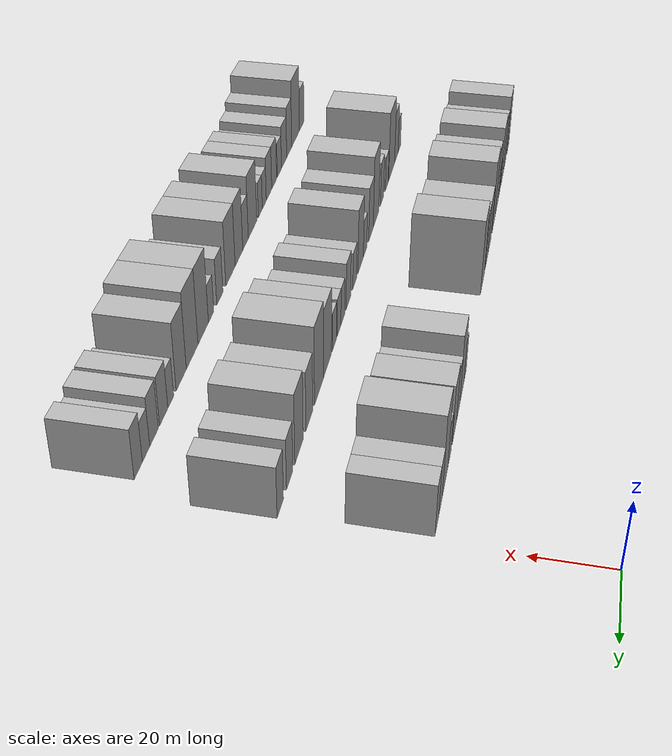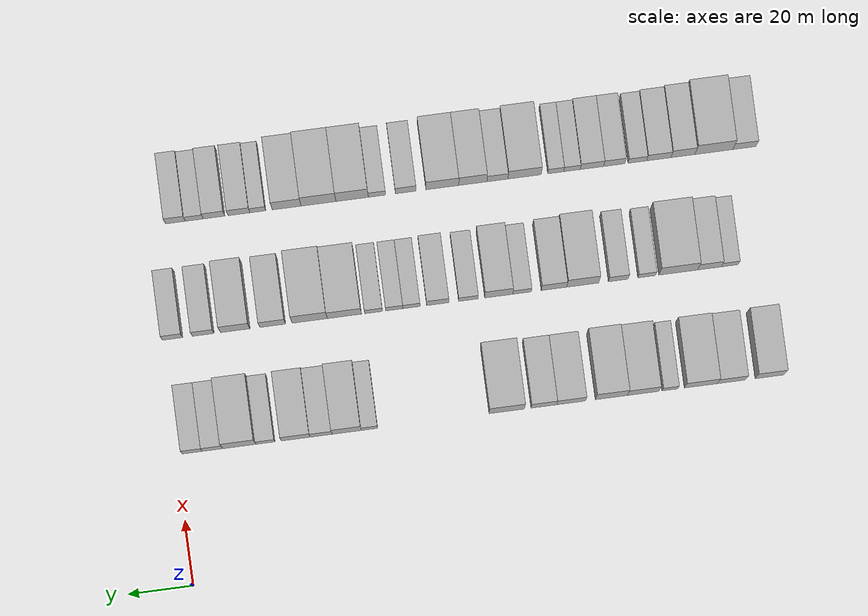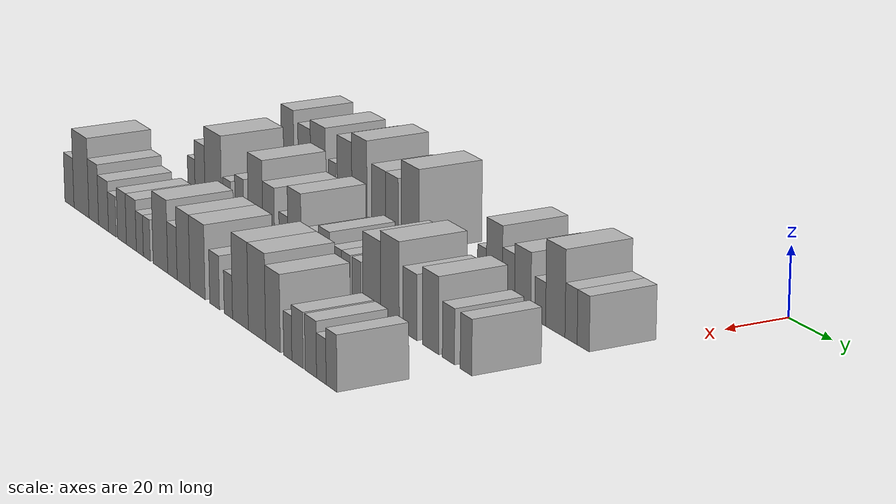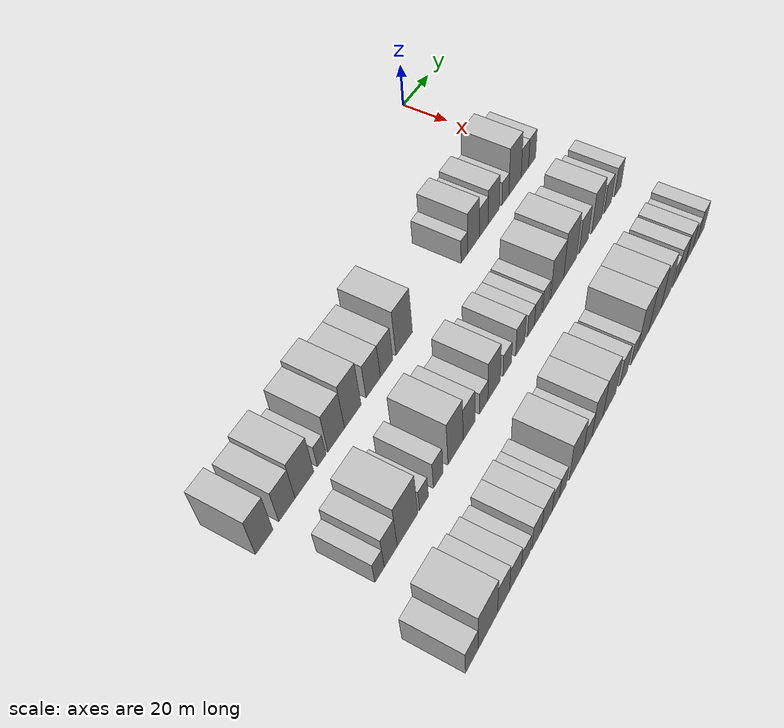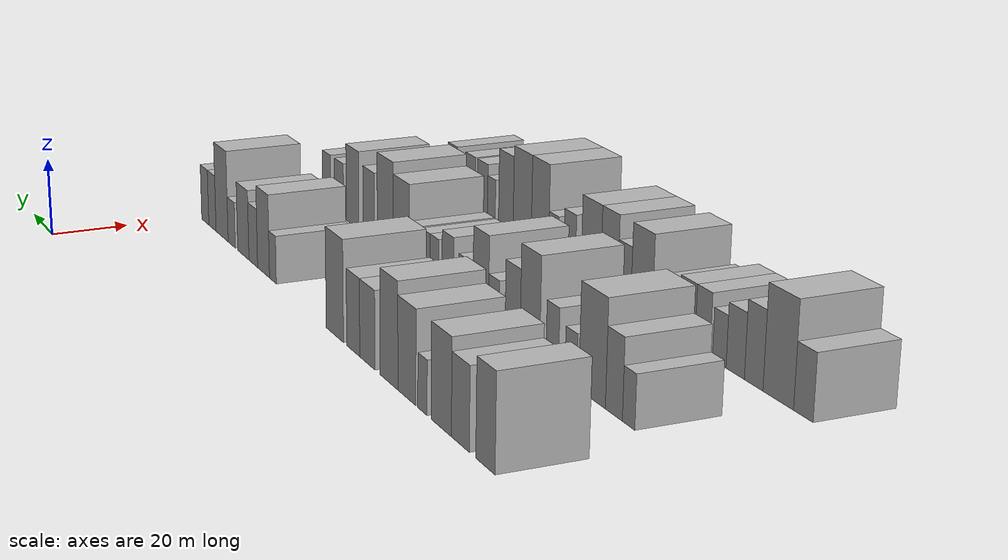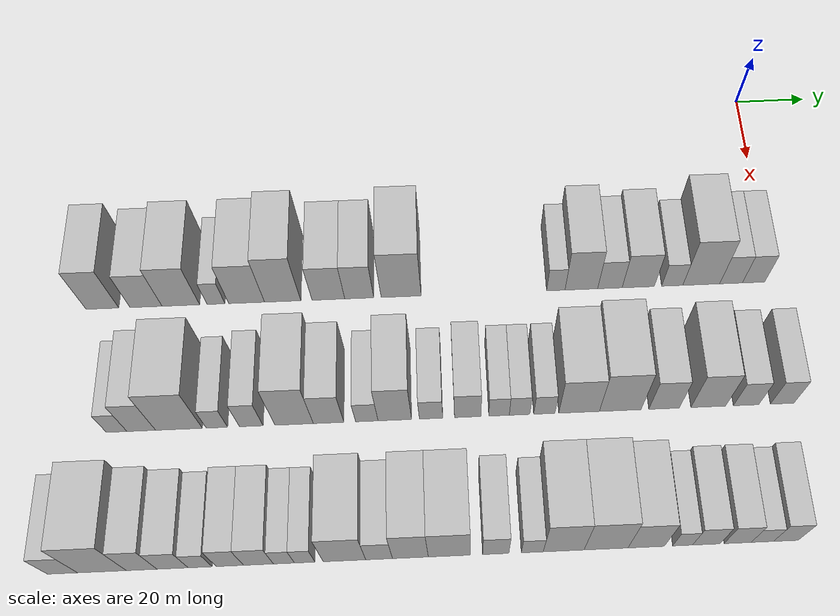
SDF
<sdf version="1.6">
 <world name="default">
  <model name="building_23">
   <static>1</static>
   <pose>50.0000 -180.9053 0 0.000000 0.000000 0.000000</pose>
   <link name="link">
    <pose>0 0 10.50 0 0 0</pose>
    <collision name="collision"><geometry><box><size>20.0000 8.7450 21.0000</size></box></geometry></collision>
    <visual name="visual">
     <cast_shadows>0</cast_shadows>
     <geometry><box><size>20.0000 8.7450 21.0000</size></box></geometry>
     <material>
      <script>
       <uri>model://HANNAS_wall/materials/scripts</uri>
       <uri>model://HANNAS_wall/materials/textures</uri>
       <name>vrc/HANNAS_wall</name>
      </script>
     </material>
    </visual>
   </link>
  </model>
  <model name="building_24">
   <static>1</static>
   <pose>50.0000 -169.2547 0 0.000000 0.000000 0.000000</pose>
   <link name="link">
    <pose>0 0 9.00 0 0 0</pose>
    <collision name="collision"><geometry><box><size>20.0000 8.5562 18.0000</size></box></geometry></collision>
    <visual name="visual">
     <cast_shadows>0</cast_shadows>
     <geometry><box><size>20.0000 8.5562 18.0000</size></box></geometry>
     <material>
      <script>
       <uri>model://HANNAS_wall/materials/scripts</uri>
       <uri>model://HANNAS_wall/materials/textures</uri>
       <name>vrc/HANNAS_wall</name>
      </script>
     </material>
    </visual>
   </link>
  </model>
  <model name="building_25">
   <static>1</static>
   <pose>50.0000 -159.9350 0 0.000000 0.000000 0.000000</pose>
   <link name="link">
    <pose>0 0 10.50 0 0 0</pose>
    <collision name="collision"><geometry><box><size>20.0000 10.0831 21.0000</size></box></geometry></collision>
    <visual name="visual">
     <cast_shadows>0</cast_shadows>
     <geometry><box><size>20.0000 10.0831 21.0000</size></box></geometry>
     <material>
      <script>
       <uri>model://HANNAS_wall/materials/scripts</uri>
       <uri>model://HANNAS_wall/materials/textures</uri>
       <name>vrc/HANNAS_wall</name>
      </script>
     </material>
    </visual>
   </link>
  </model>
  <model name="building_26">
   <static>1</static>
   <pose>50.0000 -150.4912 0 0.000000 0.000000 0.000000</pose>
   <link name="link">
    <pose>0 0 6.00 0 0 0</pose>
    <collision name="collision"><geometry><box><size>20.0000 4.8045 12.0000</size></box></geometry></collision>
    <visual name="visual">
     <cast_shadows>0</cast_shadows>
     <geometry><box><size>20.0000 4.8045 12.0000</size></box></geometry>
     <material>
      <script>
       <uri>model://HANNAS_wall/materials/scripts</uri>
       <uri>model://HANNAS_wall/materials/textures</uri>
       <name>vrc/HANNAS_wall</name>
      </script>
     </material>
    </visual>
   </link>
  </model>
  <model name="building_27">
   <static>1</static>
   <pose>50.0000 -142.2835 0 0.000000 0.000000 0.000000</pose>
   <link name="link">
    <pose>0 0 10.50 0 0 0</pose>
    <collision name="collision"><geometry><box><size>20.0000 9.6110 21.0000</size></box></geometry></collision>
    <visual name="visual">
     <cast_shadows>0</cast_shadows>
     <geometry><box><size>20.0000 9.6110 21.0000</size></box></geometry>
     <material>
      <script>
       <uri>model://HANNAS_wall/materials/scripts</uri>
       <uri>model://HANNAS_wall/materials/textures</uri>
       <name>vrc/HANNAS_wall</name>
      </script>
     </material>
    </visual>
   </link>
  </model>
  <model name="building_28">
   <static>1</static>
   <pose>50.0000 -132.5884 0 0.000000 0.000000 0.000000</pose>
   <link name="link">
    <pose>0 0 12.00 0 0 0</pose>
    <collision name="collision"><geometry><box><size>20.0000 9.7791 24.0000</size></box></geometry></collision>
    <visual name="visual">
     <cast_shadows>0</cast_shadows>
     <geometry><box><size>20.0000 9.7791 24.0000</size></box></geometry>
     <material>
      <script>
       <uri>model://HANNAS_wall/materials/scripts</uri>
       <uri>model://HANNAS_wall/materials/textures</uri>
       <name>vrc/HANNAS_wall</name>
      </script>
     </material>
    </visual>
   </link>
  </model>
  <model name="building_29">
   <static>1</static>
   <pose>50.0000 -120.2883 0 0.000000 0.000000 0.000000</pose>
   <link name="link">
    <pose>0 0 9.00 0 0 0</pose>
    <collision name="collision"><geometry><box><size>20.0000 8.8212 18.0000</size></box></geometry></collision>
    <visual name="visual">
     <cast_shadows>0</cast_shadows>
     <geometry><box><size>20.0000 8.8212 18.0000</size></box></geometry>
     <material>
      <script>
       <uri>model://HANNAS_wall/materials/scripts</uri>
       <uri>model://HANNAS_wall/materials/textures</uri>
       <name>vrc/HANNAS_wall</name>
      </script>
     </material>
    </visual>
   </link>
  </model>
  <model name="building_30">
   <static>1</static>
   <pose>50.0000 -111.9730 0 0.000000 0.000000 0.000000</pose>
   <link name="link">
    <pose>0 0 9.00 0 0 0</pose>
    <collision name="collision"><geometry><box><size>20.0000 7.8093 18.0000</size></box></geometry></collision>
    <visual name="visual">
     <cast_shadows>0</cast_shadows>
     <geometry><box><size>20.0000 7.8093 18.0000</size></box></geometry>
     <material>
      <script>
       <uri>model://HANNAS_wall/materials/scripts</uri>
       <uri>model://HANNAS_wall/materials/textures</uri>
       <name>vrc/HANNAS_wall</name>
      </script>
     </material>
    </visual>
   </link>
  </model>
  <model name="building_31">
   <static>1</static>
   <pose>50.0000 -100.6690 0 0.000000 0.000000 0.000000</pose>
   <link name="link">
    <pose>0 0 12.00 0 0 0</pose>
    <collision name="collision"><geometry><box><size>20.0000 10.7988 24.0000</size></box></geometry></collision>
    <visual name="visual">
     <cast_shadows>0</cast_shadows>
     <geometry><box><size>20.0000 10.7988 24.0000</size></box></geometry>
     <material>
      <script>
       <uri>model://HANNAS_wall/materials/scripts</uri>
       <uri>model://HANNAS_wall/materials/textures</uri>
       <name>vrc/HANNAS_wall</name>
      </script>
     </material>
    </visual>
   </link>
  </model>
  <model name="building_32">
   <static>1</static>
   <pose>50.0000 -58.7808 0 0.000000 0.000000 0.000000</pose>
   <link name="link">
    <pose>0 0 6.00 0 0 0</pose>
    <collision name="collision"><geometry><box><size>20.0000 4.9926 12.0000</size></box></geometry></collision>
    <visual name="visual">
     <cast_shadows>0</cast_shadows>
     <geometry><box><size>20.0000 4.9926 12.0000</size></box></geometry>
     <material>
      <script>
       <uri>model://HANNAS_wall/materials/scripts</uri>
       <uri>model://HANNAS_wall/materials/textures</uri>
       <name>vrc/HANNAS_wall</name>
      </script>
     </material>
    </visual>
   </link>
  </model>
  <model name="building_33">
   <static>1</static>
   <pose>50.0000 -51.8404 0 0.000000 0.000000 0.000000</pose>
   <link name="link">
    <pose>0 0 10.50 0 0 0</pose>
    <collision name="collision"><geometry><box><size>20.0000 8.8882 21.0000</size></box></geometry></collision>
    <visual name="visual">
     <cast_shadows>0</cast_shadows>
     <geometry><box><size>20.0000 8.8882 21.0000</size></box></geometry>
     <material>
      <script>
       <uri>model://HANNAS_wall/materials/scripts</uri>
       <uri>model://HANNAS_wall/materials/textures</uri>
       <name>vrc/HANNAS_wall</name>
      </script>
     </material>
    </visual>
   </link>
  </model>
  <model name="building_34">
   <static>1</static>
   <pose>50.0000 -44.0674 0 0.000000 0.000000 0.000000</pose>
   <link name="link">
    <pose>0 0 7.50 0 0 0</pose>
    <collision name="collision"><geometry><box><size>20.0000 6.6578 15.0000</size></box></geometry></collision>
    <visual name="visual">
     <cast_shadows>0</cast_shadows>
     <geometry><box><size>20.0000 6.6578 15.0000</size></box></geometry>
     <material>
      <script>
       <uri>model://HANNAS_wall/materials/scripts</uri>
       <uri>model://HANNAS_wall/materials/textures</uri>
       <name>vrc/HANNAS_wall</name>
      </script>
     </material>
    </visual>
   </link>
  </model>
  <model name="building_35">
   <static>1</static>
   <pose>50.0000 -36.3463 0 0.000000 0.000000 0.000000</pose>
   <link name="link">
    <pose>0 0 9.00 0 0 0</pose>
    <collision name="collision"><geometry><box><size>20.0000 8.7845 18.0000</size></box></geometry></collision>
    <visual name="visual">
     <cast_shadows>0</cast_shadows>
     <geometry><box><size>20.0000 8.7845 18.0000</size></box></geometry>
     <material>
      <script>
       <uri>model://HANNAS_wall/materials/scripts</uri>
       <uri>model://HANNAS_wall/materials/textures</uri>
       <name>vrc/HANNAS_wall</name>
      </script>
     </material>
    </visual>
   </link>
  </model>
  <model name="building_36">
   <static>1</static>
   <pose>50.0000 -27.0711 0 0.000000 0.000000 0.000000</pose>
   <link name="link">
    <pose>0 0 6.00 0 0 0</pose>
    <collision name="collision"><geometry><box><size>20.0000 5.7659 12.0000</size></box></geometry></collision>
    <visual name="visual">
     <cast_shadows>0</cast_shadows>
     <geometry><box><size>20.0000 5.7659 12.0000</size></box></geometry>
     <material>
      <script>
       <uri>model://HANNAS_wall/materials/scripts</uri>
       <uri>model://HANNAS_wall/materials/textures</uri>
       <name>vrc/HANNAS_wall</name>
      </script>
     </material>
    </visual>
   </link>
  </model>
  <model name="building_37">
   <static>1</static>
   <pose>50.0000 -19.1407 0 0.000000 0.000000 0.000000</pose>
   <link name="link">
    <pose>0 0 12.00 0 0 0</pose>
    <collision name="collision"><geometry><box><size>20.0000 10.0950 24.0000</size></box></geometry></collision>
    <visual name="visual">
     <cast_shadows>0</cast_shadows>
     <geometry><box><size>20.0000 10.0950 24.0000</size></box></geometry>
     <material>
      <script>
       <uri>model://HANNAS_wall/materials/scripts</uri>
       <uri>model://HANNAS_wall/materials/textures</uri>
       <name>vrc/HANNAS_wall</name>
      </script>
     </material>
    </visual>
   </link>
  </model>
  <model name="building_38">
   <static>1</static>
   <pose>50.0000 -10.9918 0 0.000000 0.000000 0.000000</pose>
   <link name="link">
    <pose>0 0 7.50 0 0 0</pose>
    <collision name="collision"><geometry><box><size>20.0000 6.2028 15.0000</size></box></geometry></collision>
    <visual name="visual">
     <cast_shadows>0</cast_shadows>
     <geometry><box><size>20.0000 6.2028 15.0000</size></box></geometry>
     <material>
      <script>
       <uri>model://HANNAS_wall/materials/scripts</uri>
       <uri>model://HANNAS_wall/materials/textures</uri>
       <name>vrc/HANNAS_wall</name>
      </script>
     </material>
    </visual>
   </link>
  </model>
  <model name="building_39">
   <static>1</static>
   <pose>50.0000 -4.8313 0 0.000000 0.000000 0.000000</pose>
   <link name="link">
    <pose>0 0 7.50 0 0 0</pose>
    <collision name="collision"><geometry><box><size>20.0000 6.1182 15.0000</size></box></geometry></collision>
    <visual name="visual">
     <cast_shadows>0</cast_shadows>
     <geometry><box><size>20.0000 6.1182 15.0000</size></box></geometry>
     <material>
      <script>
       <uri>model://HANNAS_wall/materials/scripts</uri>
       <uri>model://HANNAS_wall/materials/textures</uri>
       <name>vrc/HANNAS_wall</name>
      </script>
     </material>
    </visual>
   </link>
  </model>
  <model name="building_99">
   <static>1</static>
   <pose>85.0000 -173.4857 0 0.000000 0.000000 0.000000</pose>
   <link name="link">
    <pose>0 0 6.00 0 0 0</pose>
    <collision name="collision"><geometry><box><size>20.0000 5.1999 12.0000</size></box></geometry></collision>
    <visual name="visual">
     <cast_shadows>0</cast_shadows>
     <geometry><box><size>20.0000 5.1999 12.0000</size></box></geometry>
     <material>
      <script>
       <uri>model://HANNAS_wall/materials/scripts</uri>
       <uri>model://HANNAS_wall/materials/textures</uri>
       <name>vrc/HANNAS_wall</name>
      </script>
     </material>
    </visual>
   </link>
  </model>
  <model name="building_100">
   <static>1</static>
   <pose>85.0000 -167.2602 0 0.000000 0.000000 0.000000</pose>
   <link name="link">
    <pose>0 0 9.00 0 0 0</pose>
    <collision name="collision"><geometry><box><size>20.0000 7.2510 18.0000</size></box></geometry></collision>
    <visual name="visual">
     <cast_shadows>0</cast_shadows>
     <geometry><box><size>20.0000 7.2510 18.0000</size></box></geometry>
     <material>
      <script>
       <uri>model://HANNAS_wall/materials/scripts</uri>
       <uri>model://HANNAS_wall/materials/textures</uri>
       <name>vrc/HANNAS_wall</name>
      </script>
     </material>
    </visual>
   </link>
  </model>
  <model name="building_101">
   <static>1</static>
   <pose>85.0000 -157.7201 0 0.000000 0.000000 0.000000</pose>
   <link name="link">
    <pose>0 0 12.00 0 0 0</pose>
    <collision name="collision"><geometry><box><size>20.0000 11.8293 24.0000</size></box></geometry></collision>
    <visual name="visual">
     <cast_shadows>0</cast_shadows>
     <geometry><box><size>20.0000 11.8293 24.0000</size></box></geometry>
     <material>
      <script>
       <uri>model://HANNAS_wall/materials/scripts</uri>
       <uri>model://HANNAS_wall/materials/textures</uri>
       <name>vrc/HANNAS_wall</name>
      </script>
     </material>
    </visual>
   </link>
  </model>
  <model name="building_102">
   <static>1</static>
   <pose>85.0000 -148.1032 0 0.000000 0.000000 0.000000</pose>
   <link name="link">
    <pose>0 0 6.00 0 0 0</pose>
    <collision name="collision"><geometry><box><size>20.0000 5.4045 12.0000</size></box></geometry></collision>
    <visual name="visual">
     <cast_shadows>0</cast_shadows>
     <geometry><box><size>20.0000 5.4045 12.0000</size></box></geometry>
     <material>
      <script>
       <uri>model://HANNAS_wall/materials/scripts</uri>
       <uri>model://HANNAS_wall/materials/textures</uri>
       <name>vrc/HANNAS_wall</name>
      </script>
     </material>
    </visual>
   </link>
  </model>
  <model name="building_103">
   <static>1</static>
   <pose>85.0000 -139.3968 0 0.000000 0.000000 0.000000</pose>
   <link name="link">
    <pose>0 0 7.50 0 0 0</pose>
    <collision name="collision"><geometry><box><size>20.0000 6.0082 15.0000</size></box></geometry></collision>
    <visual name="visual">
     <cast_shadows>0</cast_shadows>
     <geometry><box><size>20.0000 6.0082 15.0000</size></box></geometry>
     <material>
      <script>
       <uri>model://HANNAS_wall/materials/scripts</uri>
       <uri>model://HANNAS_wall/materials/textures</uri>
       <name>vrc/HANNAS_wall</name>
      </script>
     </material>
    </visual>
   </link>
  </model>
  <model name="building_104">
   <static>1</static>
   <pose>85.0000 -128.5064 0 0.000000 0.000000 0.000000</pose>
   <link name="link">
    <pose>0 0 12.00 0 0 0</pose>
    <collision name="collision"><geometry><box><size>20.0000 9.7727 24.0000</size></box></geometry></collision>
    <visual name="visual">
     <cast_shadows>0</cast_shadows>
     <geometry><box><size>20.0000 9.7727 24.0000</size></box></geometry>
     <material>
      <script>
       <uri>model://HANNAS_wall/materials/scripts</uri>
       <uri>model://HANNAS_wall/materials/textures</uri>
       <name>vrc/HANNAS_wall</name>
      </script>
     </material>
    </visual>
   </link>
  </model>
  <model name="building_105">
   <static>1</static>
   <pose>85.0000 -119.7332 0 0.000000 0.000000 0.000000</pose>
   <link name="link">
    <pose>0 0 9.00 0 0 0</pose>
    <collision name="collision"><geometry><box><size>20.0000 7.7737 18.0000</size></box></geometry></collision>
    <visual name="visual">
     <cast_shadows>0</cast_shadows>
     <geometry><box><size>20.0000 7.7737 18.0000</size></box></geometry>
     <material>
      <script>
       <uri>model://HANNAS_wall/materials/scripts</uri>
       <uri>model://HANNAS_wall/materials/textures</uri>
       <name>vrc/HANNAS_wall</name>
      </script>
     </material>
    </visual>
   </link>
  </model>
  <model name="building_106">
   <static>1</static>
   <pose>85.0000 -109.9842 0 0.000000 0.000000 0.000000</pose>
   <link name="link">
    <pose>0 0 6.00 0 0 0</pose>
    <collision name="collision"><geometry><box><size>20.0000 5.7241 12.0000</size></box></geometry></collision>
    <visual name="visual">
     <cast_shadows>0</cast_shadows>
     <geometry><box><size>20.0000 5.7241 12.0000</size></box></geometry>
     <material>
      <script>
       <uri>model://HANNAS_wall/materials/scripts</uri>
       <uri>model://HANNAS_wall/materials/textures</uri>
       <name>vrc/HANNAS_wall</name>
      </script>
     </material>
    </visual>
   </link>
  </model>
  <model name="building_107">
   <static>1</static>
   <pose>85.0000 -102.8482 0 0.000000 0.000000 0.000000</pose>
   <link name="link">
    <pose>0 0 10.50 0 0 0</pose>
    <collision name="collision"><geometry><box><size>20.0000 8.5480 21.0000</size></box></geometry></collision>
    <visual name="visual">
     <cast_shadows>0</cast_shadows>
     <geometry><box><size>20.0000 8.5480 21.0000</size></box></geometry>
     <material>
      <script>
       <uri>model://HANNAS_wall/materials/scripts</uri>
       <uri>model://HANNAS_wall/materials/textures</uri>
       <name>vrc/HANNAS_wall</name>
      </script>
     </material>
    </visual>
   </link>
  </model>
  <model name="building_108">
   <static>1</static>
   <pose>85.0000 -93.5852 0 0.000000 0.000000 0.000000</pose>
   <link name="link">
    <pose>0 0 6.00 0 0 0</pose>
    <collision name="collision"><geometry><box><size>20.0000 5.9780 12.0000</size></box></geometry></collision>
    <visual name="visual">
     <cast_shadows>0</cast_shadows>
     <geometry><box><size>20.0000 5.9780 12.0000</size></box></geometry>
     <material>
      <script>
       <uri>model://HANNAS_wall/materials/scripts</uri>
       <uri>model://HANNAS_wall/materials/textures</uri>
       <name>vrc/HANNAS_wall</name>
      </script>
     </material>
    </visual>
   </link>
  </model>
  <model name="building_109">
   <static>1</static>
   <pose>85.0000 -84.2072 0 0.000000 0.000000 0.000000</pose>
   <link name="link">
    <pose>0 0 7.50 0 0 0</pose>
    <collision name="collision"><geometry><box><size>20.0000 6.7780 15.0000</size></box></geometry></collision>
    <visual name="visual">
     <cast_shadows>0</cast_shadows>
     <geometry><box><size>20.0000 6.7780 15.0000</size></box></geometry>
     <material>
      <script>
       <uri>model://HANNAS_wall/materials/scripts</uri>
       <uri>model://HANNAS_wall/materials/textures</uri>
       <name>vrc/HANNAS_wall</name>
      </script>
     </material>
    </visual>
   </link>
  </model>
  <model name="building_110">
   <static>1</static>
   <pose>85.0000 -76.1931 0 0.000000 0.000000 0.000000</pose>
   <link name="link">
    <pose>0 0 6.00 0 0 0</pose>
    <collision name="collision"><geometry><box><size>20.0000 5.2501 12.0000</size></box></geometry></collision>
    <visual name="visual">
     <cast_shadows>0</cast_shadows>
     <geometry><box><size>20.0000 5.2501 12.0000</size></box></geometry>
     <material>
      <script>
       <uri>model://HANNAS_wall/materials/scripts</uri>
       <uri>model://HANNAS_wall/materials/textures</uri>
       <name>vrc/HANNAS_wall</name>
      </script>
     </material>
    </visual>
   </link>
  </model>
  <model name="building_111">
   <static>1</static>
   <pose>85.0000 -70.9434 0 0.000000 0.000000 0.000000</pose>
   <link name="link">
    <pose>0 0 6.00 0 0 0</pose>
    <collision name="collision"><geometry><box><size>20.0000 5.2494 12.0000</size></box></geometry></collision>
    <visual name="visual">
     <cast_shadows>0</cast_shadows>
     <geometry><box><size>20.0000 5.2494 12.0000</size></box></geometry>
     <material>
      <script>
       <uri>model://HANNAS_wall/materials/scripts</uri>
       <uri>model://HANNAS_wall/materials/textures</uri>
       <name>vrc/HANNAS_wall</name>
      </script>
     </material>
    </visual>
   </link>
  </model>
  <model name="building_112">
   <static>1</static>
   <pose>85.0000 -64.6012 0 0.000000 0.000000 0.000000</pose>
   <link name="link">
    <pose>0 0 6.00 0 0 0</pose>
    <collision name="collision"><geometry><box><size>20.0000 5.4348 12.0000</size></box></geometry></collision>
    <visual name="visual">
     <cast_shadows>0</cast_shadows>
     <geometry><box><size>20.0000 5.4348 12.0000</size></box></geometry>
     <material>
      <script>
       <uri>model://HANNAS_wall/materials/scripts</uri>
       <uri>model://HANNAS_wall/materials/textures</uri>
       <name>vrc/HANNAS_wall</name>
      </script>
     </material>
    </visual>
   </link>
  </model>
  <model name="building_113">
   <static>1</static>
   <pose>85.0000 -55.6610 0 0.000000 0.000000 0.000000</pose>
   <link name="link">
    <pose>0 0 10.50 0 0 0</pose>
    <collision name="collision"><geometry><box><size>20.0000 10.4457 21.0000</size></box></geometry></collision>
    <visual name="visual">
     <cast_shadows>0</cast_shadows>
     <geometry><box><size>20.0000 10.4457 21.0000</size></box></geometry>
     <material>
      <script>
       <uri>model://HANNAS_wall/materials/scripts</uri>
       <uri>model://HANNAS_wall/materials/textures</uri>
       <name>vrc/HANNAS_wall</name>
      </script>
     </material>
    </visual>
   </link>
  </model>
  <model name="building_114">
   <static>1</static>
   <pose>85.0000 -45.0726 0 0.000000 0.000000 0.000000</pose>
   <link name="link">
    <pose>0 0 12.00 0 0 0</pose>
    <collision name="collision"><geometry><box><size>20.0000 10.7311 24.0000</size></box></geometry></collision>
    <visual name="visual">
     <cast_shadows>0</cast_shadows>
     <geometry><box><size>20.0000 10.7311 24.0000</size></box></geometry>
     <material>
      <script>
       <uri>model://HANNAS_wall/materials/scripts</uri>
       <uri>model://HANNAS_wall/materials/textures</uri>
       <name>vrc/HANNAS_wall</name>
      </script>
     </material>
    </visual>
   </link>
  </model>
  <model name="building_115">
   <static>1</static>
   <pose>85.0000 -33.7806 0 0.000000 0.000000 0.000000</pose>
   <link name="link">
    <pose>0 0 9.00 0 0 0</pose>
    <collision name="collision"><geometry><box><size>20.0000 7.8527 18.0000</size></box></geometry></collision>
    <visual name="visual">
     <cast_shadows>0</cast_shadows>
     <geometry><box><size>20.0000 7.8527 18.0000</size></box></geometry>
     <material>
      <script>
       <uri>model://HANNAS_wall/materials/scripts</uri>
       <uri>model://HANNAS_wall/materials/textures</uri>
       <name>vrc/HANNAS_wall</name>
      </script>
     </material>
    </visual>
   </link>
  </model>
  <model name="building_116">
   <static>1</static>
   <pose>85.0000 -22.3569 0 0.000000 0.000000 0.000000</pose>
   <link name="link">
    <pose>0 0 10.50 0 0 0</pose>
    <collision name="collision"><geometry><box><size>20.0000 8.9947 21.0000</size></box></geometry></collision>
    <visual name="visual">
     <cast_shadows>0</cast_shadows>
     <geometry><box><size>20.0000 8.9947 21.0000</size></box></geometry>
     <material>
      <script>
       <uri>model://HANNAS_wall/materials/scripts</uri>
       <uri>model://HANNAS_wall/materials/textures</uri>
       <name>vrc/HANNAS_wall</name>
      </script>
     </material>
    </visual>
   </link>
  </model>
  <model name="building_117">
   <static>1</static>
   <pose>85.0000 -12.5753 0 0.000000 0.000000 0.000000</pose>
   <link name="link">
    <pose>0 0 7.50 0 0 0</pose>
    <collision name="collision"><geometry><box><size>20.0000 6.5686 15.0000</size></box></geometry></collision>
    <visual name="visual">
     <cast_shadows>0</cast_shadows>
     <geometry><box><size>20.0000 6.5686 15.0000</size></box></geometry>
     <material>
      <script>
       <uri>model://HANNAS_wall/materials/scripts</uri>
       <uri>model://HANNAS_wall/materials/textures</uri>
       <name>vrc/HANNAS_wall</name>
      </script>
     </material>
    </visual>
   </link>
  </model>
  <model name="building_118">
   <static>1</static>
   <pose>85.0000 -3.2263 0 0.000000 0.000000 0.000000</pose>
   <link name="link">
    <pose>0 0 7.50 0 0 0</pose>
    <collision name="collision"><geometry><box><size>20.0000 6.1293 15.0000</size></box></geometry></collision>
    <visual name="visual">
     <cast_shadows>0</cast_shadows>
     <geometry><box><size>20.0000 6.1293 15.0000</size></box></geometry>
     <material>
      <script>
       <uri>model://HANNAS_wall/materials/scripts</uri>
       <uri>model://HANNAS_wall/materials/textures</uri>
       <name>vrc/HANNAS_wall</name>
      </script>
     </material>
    </visual>
   </link>
  </model>
  <model name="building_178">
   <static>1</static>
   <pose>120.0000 -182.7530 0 0.000000 0.000000 0.000000</pose>
   <link name="link">
    <pose>0 0 7.50 0 0 0</pose>
    <collision name="collision"><geometry><box><size>20.0000 7.1488 15.0000</size></box></geometry></collision>
    <visual name="visual">
     <cast_shadows>0</cast_shadows>
     <geometry><box><size>20.0000 7.1488 15.0000</size></box></geometry>
     <material>
      <script>
       <uri>model://HANNAS_wall/materials/scripts</uri>
       <uri>model://HANNAS_wall/materials/textures</uri>
       <name>vrc/HANNAS_wall</name>
      </script>
     </material>
    </visual>
   </link>
  </model>
  <model name="building_179">
   <static>1</static>
   <pose>120.0000 -173.3724 0 0.000000 0.000000 0.000000</pose>
   <link name="link">
    <pose>0 0 12.00 0 0 0</pose>
    <collision name="collision"><geometry><box><size>20.0000 11.6125 24.0000</size></box></geometry></collision>
    <visual name="visual">
     <cast_shadows>0</cast_shadows>
     <geometry><box><size>20.0000 11.6125 24.0000</size></box></geometry>
     <material>
      <script>
       <uri>model://HANNAS_wall/materials/scripts</uri>
       <uri>model://HANNAS_wall/materials/textures</uri>
       <name>vrc/HANNAS_wall</name>
      </script>
     </material>
    </visual>
   </link>
  </model>
  <model name="building_180">
   <static>1</static>
   <pose>120.0000 -163.9055 0 0.000000 0.000000 0.000000</pose>
   <link name="link">
    <pose>0 0 9.00 0 0 0</pose>
    <collision name="collision"><geometry><box><size>20.0000 7.3213 18.0000</size></box></geometry></collision>
    <visual name="visual">
     <cast_shadows>0</cast_shadows>
     <geometry><box><size>20.0000 7.3213 18.0000</size></box></geometry>
     <material>
      <script>
       <uri>model://HANNAS_wall/materials/scripts</uri>
       <uri>model://HANNAS_wall/materials/textures</uri>
       <name>vrc/HANNAS_wall</name>
      </script>
     </material>
    </visual>
   </link>
  </model>
  <model name="building_181">
   <static>1</static>
   <pose>120.0000 -156.5296 0 0.000000 0.000000 0.000000</pose>
   <link name="link">
    <pose>0 0 7.50 0 0 0</pose>
    <collision name="collision"><geometry><box><size>20.0000 7.4304 15.0000</size></box></geometry></collision>
    <visual name="visual">
     <cast_shadows>0</cast_shadows>
     <geometry><box><size>20.0000 7.4304 15.0000</size></box></geometry>
     <material>
      <script>
       <uri>model://HANNAS_wall/materials/scripts</uri>
       <uri>model://HANNAS_wall/materials/textures</uri>
       <name>vrc/HANNAS_wall</name>
      </script>
     </material>
    </visual>
   </link>
  </model>
  <model name="building_182">
   <static>1</static>
   <pose>120.0000 -149.9594 0 0.000000 0.000000 0.000000</pose>
   <link name="link">
    <pose>0 0 6.00 0 0 0</pose>
    <collision name="collision"><geometry><box><size>20.0000 5.7101 12.0000</size></box></geometry></collision>
    <visual name="visual">
     <cast_shadows>0</cast_shadows>
     <geometry><box><size>20.0000 5.7101 12.0000</size></box></geometry>
     <material>
      <script>
       <uri>model://HANNAS_wall/materials/scripts</uri>
       <uri>model://HANNAS_wall/materials/textures</uri>
       <name>vrc/HANNAS_wall</name>
      </script>
     </material>
    </visual>
   </link>
  </model>
  <model name="building_183">
   <static>1</static>
   <pose>120.0000 -142.8521 0 0.000000 0.000000 0.000000</pose>
   <link name="link">
    <pose>0 0 7.50 0 0 0</pose>
    <collision name="collision"><geometry><box><size>20.0000 6.5044 15.0000</size></box></geometry></collision>
    <visual name="visual">
     <cast_shadows>0</cast_shadows>
     <geometry><box><size>20.0000 6.5044 15.0000</size></box></geometry>
     <material>
      <script>
       <uri>model://HANNAS_wall/materials/scripts</uri>
       <uri>model://HANNAS_wall/materials/textures</uri>
       <name>vrc/HANNAS_wall</name>
      </script>
     </material>
    </visual>
   </link>
  </model>
  <model name="building_184">
   <static>1</static>
   <pose>120.0000 -136.0126 0 0.000000 0.000000 0.000000</pose>
   <link name="link">
    <pose>0 0 7.50 0 0 0</pose>
    <collision name="collision"><geometry><box><size>20.0000 7.1747 15.0000</size></box></geometry></collision>
    <visual name="visual">
     <cast_shadows>0</cast_shadows>
     <geometry><box><size>20.0000 7.1747 15.0000</size></box></geometry>
     <material>
      <script>
       <uri>model://HANNAS_wall/materials/scripts</uri>
       <uri>model://HANNAS_wall/materials/textures</uri>
       <name>vrc/HANNAS_wall</name>
      </script>
     </material>
    </visual>
   </link>
  </model>
  <model name="building_185">
   <static>1</static>
   <pose>120.0000 -129.9106 0 0.000000 0.000000 0.000000</pose>
   <link name="link">
    <pose>0 0 6.00 0 0 0</pose>
    <collision name="collision"><geometry><box><size>20.0000 5.0293 12.0000</size></box></geometry></collision>
    <visual name="visual">
     <cast_shadows>0</cast_shadows>
     <geometry><box><size>20.0000 5.0293 12.0000</size></box></geometry>
     <material>
      <script>
       <uri>model://HANNAS_wall/materials/scripts</uri>
       <uri>model://HANNAS_wall/materials/textures</uri>
       <name>vrc/HANNAS_wall</name>
      </script>
     </material>
    </visual>
   </link>
  </model>
  <model name="building_186">
   <static>1</static>
   <pose>120.0000 -124.9448 0 0.000000 0.000000 0.000000</pose>
   <link name="link">
    <pose>0 0 6.00 0 0 0</pose>
    <collision name="collision"><geometry><box><size>20.0000 4.9021 12.0000</size></box></geometry></collision>
    <visual name="visual">
     <cast_shadows>0</cast_shadows>
     <geometry><box><size>20.0000 4.9021 12.0000</size></box></geometry>
     <material>
      <script>
       <uri>model://HANNAS_wall/materials/scripts</uri>
       <uri>model://HANNAS_wall/materials/textures</uri>
       <name>vrc/HANNAS_wall</name>
      </script>
     </material>
    </visual>
   </link>
  </model>
  <model name="building_187">
   <static>1</static>
   <pose>120.0000 -115.4007 0 0.000000 0.000000 0.000000</pose>
   <link name="link">
    <pose>0 0 10.50 0 0 0</pose>
    <collision name="collision"><geometry><box><size>20.0000 10.1862 21.0000</size></box></geometry></collision>
    <visual name="visual">
     <cast_shadows>0</cast_shadows>
     <geometry><box><size>20.0000 10.1862 21.0000</size></box></geometry>
     <material>
      <script>
       <uri>model://HANNAS_wall/materials/scripts</uri>
       <uri>model://HANNAS_wall/materials/textures</uri>
       <name>vrc/HANNAS_wall</name>
      </script>
     </material>
    </visual>
   </link>
  </model>
  <model name="building_188">
   <static>1</static>
   <pose>120.0000 -107.0997 0 0.000000 0.000000 0.000000</pose>
   <link name="link">
    <pose>0 0 7.50 0 0 0</pose>
    <collision name="collision"><geometry><box><size>20.0000 6.4159 15.0000</size></box></geometry></collision>
    <visual name="visual">
     <cast_shadows>0</cast_shadows>
     <geometry><box><size>20.0000 6.4159 15.0000</size></box></geometry>
     <material>
      <script>
       <uri>model://HANNAS_wall/materials/scripts</uri>
       <uri>model://HANNAS_wall/materials/textures</uri>
       <name>vrc/HANNAS_wall</name>
      </script>
     </material>
    </visual>
   </link>
  </model>
  <model name="building_189">
   <static>1</static>
   <pose>120.0000 -99.5832 0 0.000000 0.000000 0.000000</pose>
   <link name="link">
    <pose>0 0 10.50 0 0 0</pose>
    <collision name="collision"><geometry><box><size>20.0000 8.6171 21.0000</size></box></geometry></collision>
    <visual name="visual">
     <cast_shadows>0</cast_shadows>
     <geometry><box><size>20.0000 8.6171 21.0000</size></box></geometry>
     <material>
      <script>
       <uri>model://HANNAS_wall/materials/scripts</uri>
       <uri>model://HANNAS_wall/materials/textures</uri>
       <name>vrc/HANNAS_wall</name>
      </script>
     </material>
    </visual>
   </link>
  </model>
  <model name="building_190">
   <static>1</static>
   <pose>120.0000 -90.2320 0 0.000000 0.000000 0.000000</pose>
   <link name="link">
    <pose>0 0 10.50 0 0 0</pose>
    <collision name="collision"><geometry><box><size>20.0000 10.0854 21.0000</size></box></geometry></collision>
    <visual name="visual">
     <cast_shadows>0</cast_shadows>
     <geometry><box><size>20.0000 10.0854 21.0000</size></box></geometry>
     <material>
      <script>
       <uri>model://HANNAS_wall/materials/scripts</uri>
       <uri>model://HANNAS_wall/materials/textures</uri>
       <name>vrc/HANNAS_wall</name>
      </script>
     </material>
    </visual>
   </link>
  </model>
  <model name="building_191">
   <static>1</static>
   <pose>120.0000 -79.0177 0 0.000000 0.000000 0.000000</pose>
   <link name="link">
    <pose>0 0 7.50 0 0 0</pose>
    <collision name="collision"><geometry><box><size>20.0000 6.3431 15.0000</size></box></geometry></collision>
    <visual name="visual">
     <cast_shadows>0</cast_shadows>
     <geometry><box><size>20.0000 6.3431 15.0000</size></box></geometry>
     <material>
      <script>
       <uri>model://HANNAS_wall/materials/scripts</uri>
       <uri>model://HANNAS_wall/materials/textures</uri>
       <name>vrc/HANNAS_wall</name>
      </script>
     </material>
    </visual>
   </link>
  </model>
  <model name="building_192">
   <static>1</static>
   <pose>120.0000 -70.1980 0 0.000000 0.000000 0.000000</pose>
   <link name="link">
    <pose>0 0 6.00 0 0 0</pose>
    <collision name="collision"><geometry><box><size>20.0000 5.2964 12.0000</size></box></geometry></collision>
    <visual name="visual">
     <cast_shadows>0</cast_shadows>
     <geometry><box><size>20.0000 5.2964 12.0000</size></box></geometry>
     <material>
      <script>
       <uri>model://HANNAS_wall/materials/scripts</uri>
       <uri>model://HANNAS_wall/materials/textures</uri>
       <name>vrc/HANNAS_wall</name>
      </script>
     </material>
    </visual>
   </link>
  </model>
  <model name="building_193">
   <static>1</static>
   <pose>120.0000 -62.5988 0 0.000000 0.000000 0.000000</pose>
   <link name="link">
    <pose>0 0 12.00 0 0 0</pose>
    <collision name="collision"><geometry><box><size>20.0000 9.9022 24.0000</size></box></geometry></collision>
    <visual name="visual">
     <cast_shadows>0</cast_shadows>
     <geometry><box><size>20.0000 9.9022 24.0000</size></box></geometry>
     <material>
      <script>
       <uri>model://HANNAS_wall/materials/scripts</uri>
       <uri>model://HANNAS_wall/materials/textures</uri>
       <name>vrc/HANNAS_wall</name>
      </script>
     </material>
    </visual>
   </link>
  </model>
  <model name="building_194">
   <static>1</static>
   <pose>120.0000 -52.3294 0 0.000000 0.000000 0.000000</pose>
   <link name="link">
    <pose>0 0 12.00 0 0 0</pose>
    <collision name="collision"><geometry><box><size>20.0000 10.6366 24.0000</size></box></geometry></collision>
    <visual name="visual">
     <cast_shadows>0</cast_shadows>
     <geometry><box><size>20.0000 10.6366 24.0000</size></box></geometry>
     <material>
      <script>
       <uri>model://HANNAS_wall/materials/scripts</uri>
       <uri>model://HANNAS_wall/materials/textures</uri>
       <name>vrc/HANNAS_wall</name>
      </script>
     </material>
    </visual>
   </link>
  </model>
  <model name="building_195">
   <static>1</static>
   <pose>120.0000 -42.5807 0 0.000000 0.000000 0.000000</pose>
   <link name="link">
    <pose>0 0 10.50 0 0 0</pose>
    <collision name="collision"><geometry><box><size>20.0000 8.8609 21.0000</size></box></geometry></collision>
    <visual name="visual">
     <cast_shadows>0</cast_shadows>
     <geometry><box><size>20.0000 8.8609 21.0000</size></box></geometry>
     <material>
      <script>
       <uri>model://HANNAS_wall/materials/scripts</uri>
       <uri>model://HANNAS_wall/materials/textures</uri>
       <name>vrc/HANNAS_wall</name>
      </script>
     </material>
    </visual>
   </link>
  </model>
  <model name="building_196">
   <static>1</static>
   <pose>120.0000 -33.7336 0 0.000000 0.000000 0.000000</pose>
   <link name="link">
    <pose>0 0 6.00 0 0 0</pose>
    <collision name="collision"><geometry><box><size>20.0000 4.8332 12.0000</size></box></geometry></collision>
    <visual name="visual">
     <cast_shadows>0</cast_shadows>
     <geometry><box><size>20.0000 4.8332 12.0000</size></box></geometry>
     <material>
      <script>
       <uri>model://HANNAS_wall/materials/scripts</uri>
       <uri>model://HANNAS_wall/materials/textures</uri>
       <name>vrc/HANNAS_wall</name>
      </script>
     </material>
    </visual>
   </link>
  </model>
  <model name="building_197">
   <static>1</static>
   <pose>120.0000 -27.9725 0 0.000000 0.000000 0.000000</pose>
   <link name="link">
    <pose>0 0 7.50 0 0 0</pose>
    <collision name="collision"><geometry><box><size>20.0000 6.6890 15.0000</size></box></geometry></collision>
    <visual name="visual">
     <cast_shadows>0</cast_shadows>
     <geometry><box><size>20.0000 6.6890 15.0000</size></box></geometry>
     <material>
      <script>
       <uri>model://HANNAS_wall/materials/scripts</uri>
       <uri>model://HANNAS_wall/materials/textures</uri>
       <name>vrc/HANNAS_wall</name>
      </script>
     </material>
    </visual>
   </link>
  </model>
  <model name="building_198">
   <static>1</static>
   <pose>120.0000 -20.3239 0 0.000000 0.000000 0.000000</pose>
   <link name="link">
    <pose>0 0 7.50 0 0 0</pose>
    <collision name="collision"><geometry><box><size>20.0000 6.6083 15.0000</size></box></geometry></collision>
    <visual name="visual">
     <cast_shadows>0</cast_shadows>
     <geometry><box><size>20.0000 6.6083 15.0000</size></box></geometry>
     <material>
      <script>
       <uri>model://HANNAS_wall/materials/scripts</uri>
       <uri>model://HANNAS_wall/materials/textures</uri>
       <name>vrc/HANNAS_wall</name>
      </script>
     </material>
    </visual>
   </link>
  </model>
  <model name="building_199">
   <static>1</static>
   <pose>120.0000 -14.2937 0 0.000000 0.000000 0.000000</pose>
   <link name="link">
    <pose>0 0 6.00 0 0 0</pose>
    <collision name="collision"><geometry><box><size>20.0000 5.4522 12.0000</size></box></geometry></collision>
    <visual name="visual">
     <cast_shadows>0</cast_shadows>
     <geometry><box><size>20.0000 5.4522 12.0000</size></box></geometry>
     <material>
      <script>
       <uri>model://HANNAS_wall/materials/scripts</uri>
       <uri>model://HANNAS_wall/materials/textures</uri>
       <name>vrc/HANNAS_wall</name>
      </script>
     </material>
    </visual>
   </link>
  </model>
  <model name="building_200">
   <static>1</static>
   <pose>120.0000 -8.5364 0 0.000000 0.000000 0.000000</pose>
   <link name="link">
    <pose>0 0 7.50 0 0 0</pose>
    <collision name="collision"><geometry><box><size>20.0000 6.0623 15.0000</size></box></geometry></collision>
    <visual name="visual">
     <cast_shadows>0</cast_shadows>
     <geometry><box><size>20.0000 6.0623 15.0000</size></box></geometry>
     <material>
      <script>
       <uri>model://HANNAS_wall/materials/scripts</uri>
       <uri>model://HANNAS_wall/materials/textures</uri>
       <name>vrc/HANNAS_wall</name>
      </script>
     </material>
    </visual>
   </link>
  </model>
 </world>
</sdf>
